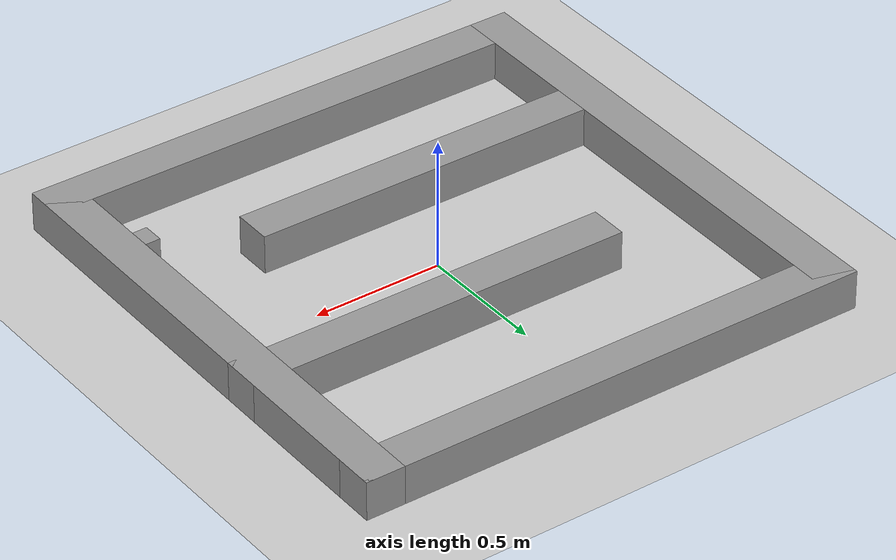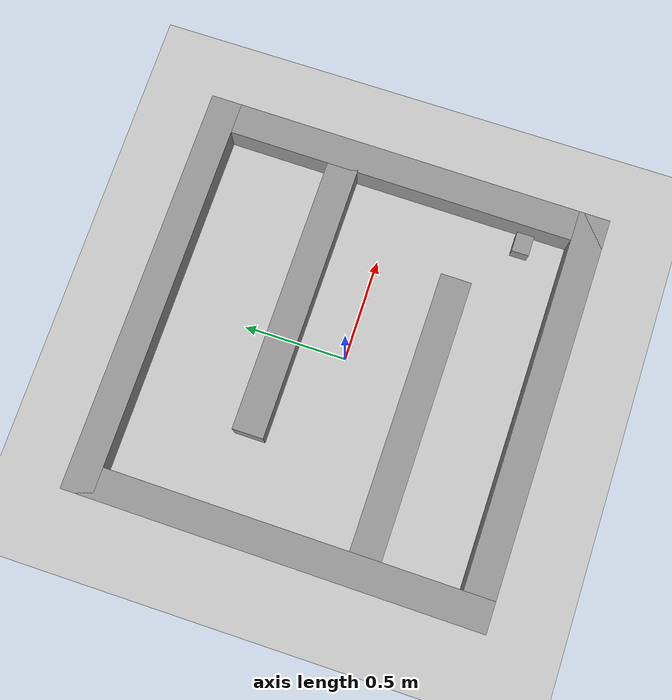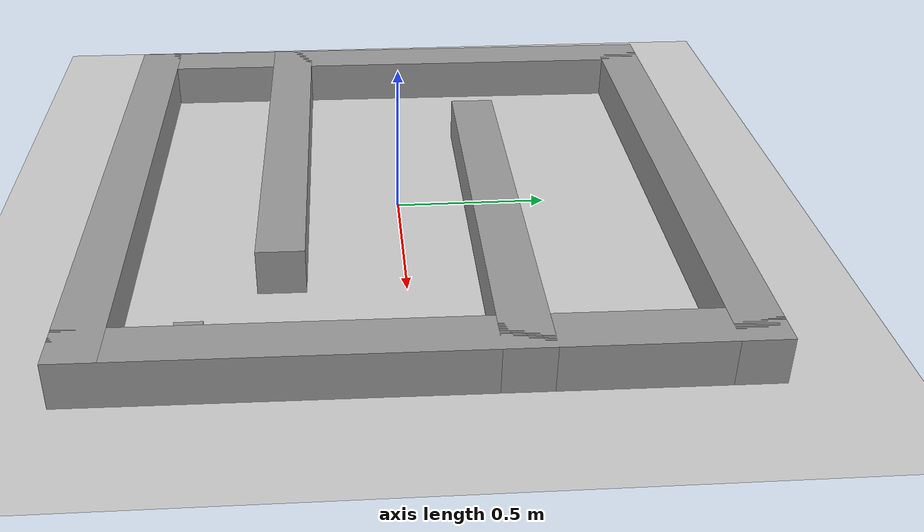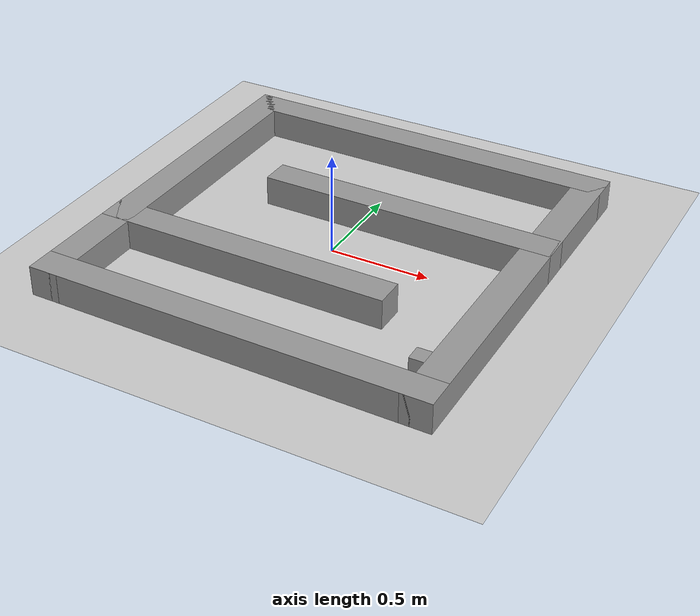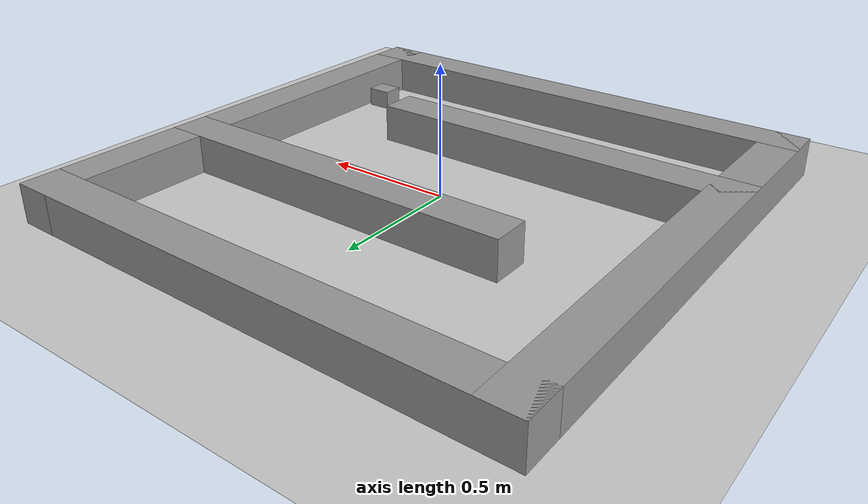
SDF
<sdf version="1.7">
 <world name="default">
  <light name="sun" type="directional">
   <pose>0 0 10 0 -0 0</pose>
   <diffuse>0.8 0.8 0.8 1</diffuse>
   <specular>0.2 0.2 0.2 1</specular>
   <attenuation>
    <range>1000</range>
    <constant>0.9</constant>
    <linear>0.01</linear>
    <quadratic>0.001</quadratic>
   </attenuation>
   <direction>-0.5 0.1 -0.9</direction>
   <spot><inner_angle>0</inner_angle><outer_angle>0</outer_angle><falloff>0</falloff></spot>
  </light>
  <model name="ground_plane">
   <static>1</static>
   <link name="link">
    <collision name="collision">
     <geometry><plane><normal>0 0 1</normal><size>100 100</size></plane></geometry>
     <surface>
      <contact><collide_bitmask>65535</collide_bitmask></contact>
      <friction><ode><mu>100</mu><mu2>50</mu2></ode></friction>
     </surface>
    </collision>
    <visual name="visual">
     <cast_shadows>0</cast_shadows>
     <geometry><plane><normal>0 0 1</normal><size>100 100</size></plane></geometry>
     <material>
      <script><uri>file://media/materials/scripts/gazebo.material</uri><name>Gazebo/Grey</name></script>
     </material>
    </visual>
   </link>
  </model>
  <gravity>0 0 -9.8</gravity>
  <magnetic_field>6e-06 2.3e-05 -4.2e-05</magnetic_field>
  <atmosphere type="adiabatic"/>
  <physics type="ode">
   <max_step_size>0.001</max_step_size>
   <real_time_factor>1</real_time_factor>
   <real_time_update_rate>1000</real_time_update_rate>
  </physics>
  <scene><ambient>0.4 0.4 0.4 1</ambient><background>0.7 0.7 0.7 1</background><shadows>1</shadows></scene>
  <audio><device>default</device></audio>
  <spherical_coordinates>
   <surface_model>EARTH_WGS84</surface_model>
   <latitude_deg>0</latitude_deg>
   <longitude_deg>0</longitude_deg>
   <elevation>0</elevation>
   <heading_deg>0</heading_deg>
  </spherical_coordinates>
  <plugin name="gazebo_ros_init" filename="libgazebo_ros_init.so">
   <ros><namespace>/</namespace><argument>--ros-args</argument></ros>
  </plugin>
  <plugin name="gazebo_ros_factory" filename="libgazebo_ros_factory.so"/>
  <plugin name="gazebo_ros_api_plugin" filename="libgazebo_ros_api_plugin.so"/>
  <plugin name="gazebo_ros_state" filename="libgazebo_ros_state.so"/>
  <model name="final_arena_setup_0">
   <pose>-0.424895 -0.772872 -0 0 -0 3.13415</pose>
   <link name="Wall_0">
    <collision name="Wall_0_Collision">
     <geometry><box><size>2 0.15 0.15</size></box></geometry>
     <pose>0 0 0.075 0 -0 0</pose>
    </collision>
    <visual name="Wall_0_Visual">
     <pose>0 0 0.075 0 -0 0</pose>
     <geometry><box><size>2 0.15 0.15</size></box></geometry>
     <material>
      <script><uri>file://media/materials/scripts/gazebo.material</uri><name>Gazebo/Grey</name></script>
      <ambient>1 1 1 1</ambient>
     </material>
     <meta><layer>0</layer></meta>
    </visual>
    <pose>-0.4225 0.1325 0 0 -0 0</pose>
   </link>
   <link name="Wall_1">
    <collision name="Wall_1_Collision">
     <geometry><box><size>2 0.15 0.15</size></box></geometry>
     <pose>0 0 0.075 0 -0 0</pose>
    </collision>
    <visual name="Wall_1_Visual">
     <pose>0 0 0.075 0 -0 0</pose>
     <geometry><box><size>2 0.15 0.15</size></box></geometry>
     <material>
      <script><uri>file://media/materials/scripts/gazebo.material</uri><name>Gazebo/Grey</name></script>
      <ambient>1 1 1 1</ambient>
     </material>
     <meta><layer>0</layer></meta>
    </visual>
    <pose>0.5025 -0.7925 0 0 -0 -1.5708</pose>
   </link>
   <link name="Wall_11">
    <collision name="Wall_11_Collision">
     <geometry><box><size>1.5 0.15 0.15</size></box></geometry>
     <pose>0 0 0.075 0 -0 0</pose>
    </collision>
    <visual name="Wall_11_Visual">
     <pose>0 0 0.075 0 -0 0</pose>
     <geometry><box><size>1.5 0.15 0.15</size></box></geometry>
     <material>
      <script><uri>file://media/materials/scripts/gazebo.material</uri><name>Gazebo/Grey</name></script>
      <ambient>1 1 1 1</ambient>
     </material>
     <meta><layer>0</layer></meta>
    </visual>
    <pose>-0.1725 -0.3975 0 0 -0 3.14159</pose>
   </link>
   <link name="Wall_2">
    <collision name="Wall_2_Collision">
     <geometry><box><size>2 0.15 0.15</size></box></geometry>
     <pose>0 0 0.075 0 -0 0</pose>
    </collision>
    <visual name="Wall_2_Visual">
     <pose>0 0 0.075 0 -0 0</pose>
     <geometry><box><size>2 0.15 0.15</size></box></geometry>
     <material>
      <script><uri>file://media/materials/scripts/gazebo.material</uri><name>Gazebo/Grey</name></script>
      <ambient>1 1 1 1</ambient>
     </material>
     <meta><layer>0</layer></meta>
    </visual>
    <pose>-0.4225 -1.7175 0 0 -0 3.14159</pose>
   </link>
   <link name="Wall_3">
    <collision name="Wall_3_Collision">
     <geometry><box><size>2 0.15 0.15</size></box></geometry>
     <pose>0 0 0.075 0 -0 0</pose>
    </collision>
    <visual name="Wall_3_Visual">
     <pose>0 0 0.075 0 -0 0</pose>
     <geometry><box><size>2 0.15 0.15</size></box></geometry>
     <material>
      <script><uri>file://media/materials/scripts/gazebo.material</uri><name>Gazebo/Grey</name></script>
      <ambient>1 1 1 1</ambient>
     </material>
     <meta><layer>0</layer></meta>
    </visual>
    <pose>-1.3475 -0.7925 0 0 -0 1.5708</pose>
   </link>
   <link name="Wall_9">
    <collision name="Wall_9_Collision">
     <geometry><box><size>1.5 0.15 0.15</size></box></geometry>
     <pose>0 0 0.075 0 -0 0</pose>
    </collision>
    <visual name="Wall_9_Visual">
     <pose>0 0 0.075 0 -0 0</pose>
     <geometry><box><size>1.5 0.15 0.15</size></box></geometry>
     <material>
      <script><uri>file://media/materials/scripts/gazebo.material</uri><name>Gazebo/Grey</name></script>
      <ambient>1 1 1 1</ambient>
     </material>
     <meta><layer>0</layer></meta>
    </visual>
    <pose>-0.6725 -1.0775 0 0 -0 0</pose>
   </link>
   <static>1</static>
  </model>
  <model name="unit_box">
   <pose>0.785238 -0.635783 0.038895 -1.57079 1e-06 1.57523</pose>
   <link name="link">
    <inertial>
     <mass>1</mass>
     <inertia>
      <ixx>0.166667</ixx>
      <ixy>0</ixy>
      <ixz>0</ixz>
      <iyy>0.166667</iyy>
      <iyz>0</iyz>
      <izz>0.166667</izz>
     </inertia>
    </inertial>
    <collision name="collision"><geometry><box><size>0.08399 0.077791 0.098588</size></box></geometry></collision>
    <visual name="visual">
     <geometry><box><size>0.08399 0.077791 0.098588</size></box></geometry>
     <material>
      <script><name>Gazebo/Grey</name><uri>file://media/materials/scripts/gazebo.material</uri></script>
     </material>
    </visual>
   </link>
  </model>
 </world>
</sdf>
